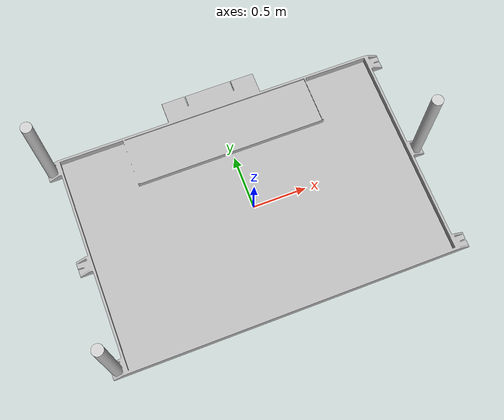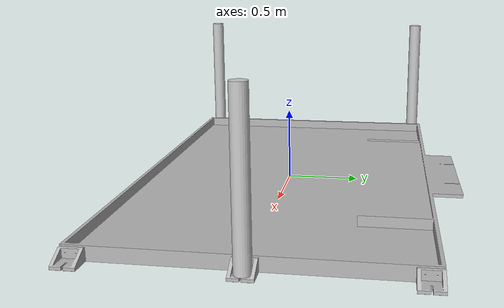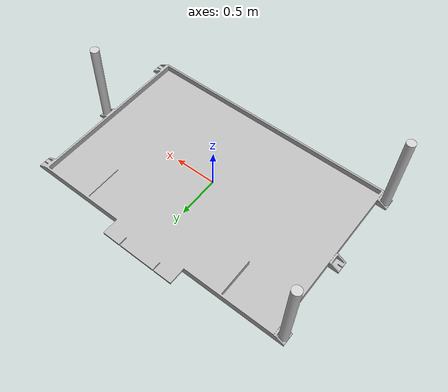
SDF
<sdf version='1.9'>
  <world name='empty'>
    <physics name='1ms' type='ignored'>
      <max_step_size>0.001</max_step_size>
      <real_time_factor>1</real_time_factor>
      <real_time_update_rate>1000</real_time_update_rate>
    </physics>
    <plugin name='gz::sim::systems::Physics' filename='gz-sim-physics-system'/>
    <plugin name='gz::sim::systems::UserCommands' filename='gz-sim-user-commands-system'/>
    <plugin name='gz::sim::systems::SceneBroadcaster' filename='gz-sim-scene-broadcaster-system'/>
    <plugin name='gz::sim::systems::Contact' filename='gz-sim-contact-system'/>
    <gravity>0 0 -9.8000000000000007</gravity>
    <magnetic_field>5.5644999999999998e-06 2.2875799999999999e-05 -4.2388400000000002e-05</magnetic_field>
    <atmosphere type='adiabatic'/>
    <scene>
      <ambient>0.400000006 0.400000006 0.400000006 1</ambient>
      <background>0.699999988 0.699999988 0.699999988 1</background>
      <shadows>true</shadows>
    </scene>
    <plugin name='gz::sim::systems::Physics' filename='gz-sim-physics-system'/>
    <plugin name='gz::sim::systems::Sensors' filename='gz-sim-sensors-system'/>
    <plugin name='gz::sim::systems::Imu' filename='gz-sim-imu-system'/>
    <plugin name='gz::sim::systems::UserCommands' filename='gz-sim-user-commands-system'/>
    <plugin name='gz::sim::systems::SceneBroadcaster' filename='gz-sim-scene-broadcaster-system'/>
    <plugin name='gz::sim::systems::MyPlugin' filename='libgz-match-plugin.so'/>
    <model name='Table_2024'>
      <static>true</static>
      <plugin name='gz::sim::systems::Label' filename='gz-sim-label-system'>
        <label>1</label>
      </plugin>
      <link name='link_0'>
        <gravity>false</gravity>
        <inertial>
          <inertia>
            <ixx>0.16666700000000001</ixx>
            <ixy>0</ixy>
            <ixz>0</ixz>
            <iyy>0.16666700000000001</iyy>
            <iyz>0</iyz>
            <izz>0.16666700000000001</izz>
          </inertia>
          <pose>0 0 0 0 0 0</pose>
          <mass>1</mass>
        </inertial>
        <pose>0 0 0 0 0 0</pose>
        <visual name='visual'>
          <pose>0 0 0 0 0 0</pose>
          <geometry>
            <mesh>
              <uri>model://Table2026/table2026.dae</uri>
              <scale>1 1 1</scale>
            </mesh>
          </geometry>
          <transparency>0</transparency>
          <cast_shadows>true</cast_shadows>
        </visual>
        <collision name='collision'>
          <laser_retro>0</laser_retro>
          <max_contacts>10</max_contacts>
          <pose>0 0 0 0 0 0</pose>
          <geometry>
            <mesh>
              <uri>model://Table2026/table2026.dae</uri>
              <scale>1 1 1</scale>
            </mesh>
          </geometry>
          <surface>
            <friction>
              <ode>
                <mu>1</mu>
                <mu2>1</mu2>
                <fdir1>0 0 0</fdir1>
                <slip1>0</slip1>
                <slip2>0</slip2>
              </ode>
              <torsional>
                <coefficient>1</coefficient>
                <patch_radius>0</patch_radius>
                <surface_radius>0</surface_radius>
                <use_patch_radius>true</use_patch_radius>
                <ode>
                  <slip>0</slip>
                </ode>
              </torsional>
            </friction>
            <contact>
              <collide_without_contact>false</collide_without_contact>
              <collide_without_contact_bitmask>1</collide_without_contact_bitmask>
              <collide_bitmask>1</collide_bitmask>
              <ode>
                <soft_cfm>0</soft_cfm>
                <soft_erp>0.20000000000000001</soft_erp>
                <kp>10000000000000</kp>
                <kd>1</kd>
                <max_vel>0.01</max_vel>
                <min_depth>0.01</min_depth>
              </ode>
              <bullet>
                <split_impulse>true</split_impulse>
                <split_impulse_penetration_threshold>-0.01</split_impulse_penetration_threshold>
                <soft_cfm>0</soft_cfm>
                <soft_erp>0.20000000000000001</soft_erp>
                <kp>10000000000000</kp>
                <kd>1</kd>
              </bullet>
            </contact>
          </surface>
        </collision>
        <enable_wind>false</enable_wind>
      </link>
      <pose>0 0 0 0 0 0</pose>
      <static>false</static>
      <allow_auto_disable>true</allow_auto_disable>
      <self_collide>false</self_collide>
    </model>
    <include>
      <uri>model://poteau</uri>
      <name>Poteau</name>
      <pose>-1.5940834785821341 0.95127999884232251 0 0 0 0</pose>
    </include>
    <include>
      <uri>model://poteau</uri>
      <name>Poteau_0</name>
      <pose>-1.5907866783212912 -0.95203091257895289 0 0 0 0</pose>
    </include>
    <include>
      <uri>model://poteau</uri>
      <name>Poteau_1</name>
      <pose>1.5912342301951856 0.002020733759849222 0 0 0 0</pose>
    </include>
    <light name='sun' type='directional'>
      <pose>0 0 10 0 0 0</pose>
      <cast_shadows>true</cast_shadows>
      <intensity>1</intensity>
      <direction>-0.5 0.10000000000000001 -0.90000000000000002</direction>
      <diffuse>0.800000012 0.800000012 0.800000012 1</diffuse>
      <specular>0.200000003 0.200000003 0.200000003 1</specular>
      <attenuation>
        <range>1000</range>
        <linear>0.0099999997764825821</linear>
        <constant>0.89999997615814209</constant>
        <quadratic>0.0010000000474974513</quadratic>
      </attenuation>
      <spot>
        <inner_angle>0</inner_angle>
        <outer_angle>0</outer_angle>
        <falloff>0</falloff>
      </spot>
    </light>
  </world>
</sdf>

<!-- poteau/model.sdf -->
<sdf version='1.7'>
  <model name='Poteau'>
   	<static>true</static>
    <allow_auto_disable>true</allow_auto_disable>
    <plugin filename="gz-sim-label-system" name="gz::sim::systems::Label">
        <label>2</label>
    </plugin>
    <link name='link_0'>
			<gravity>0</gravity>
      <inertial>
        <pose>0 0 0.02 0 0 0</pose>
        <mass>0.025</mass>
        <inertia>
          <ixx>2.5e-5</ixx>
          <ixy>0</ixy>
          <ixz>0</ixz>
          <iyy>2.5e-5</iyy>
          <iyz>0</iyz>
          <izz>8e-6</izz>
        </inertia>
      </inertial>
      <pose>0 0 0.5 0 0 0</pose>
      <visual name='visual'>
        <pose>0 0 0 0 -0 0</pose>
        <geometry>
          <cylinder>
            <radius>0.05</radius>
            <length>1.0</length>
          </cylinder>
        </geometry>
        <material>
          <ambient>0.8 0.8 0.8 1</ambient>
          <diffuse>0.8 0.8 0.8 1</diffuse>
          <specular>0.1 0.1 0.1 1</specular>
          <emissive>0 0 0 1</emissive>
        </material>
        <transparency>0</transparency>
        <cast_shadows>1</cast_shadows>
      </visual>

      <collision name='collision'>
        <laser_retro>1</laser_retro>
        <max_contacts>5 </max_contacts>
        <pose>0 0 0.5 0 0 0</pose>
        <geometry>
          <cylinder>
            <radius>0.05</radius>
            <length>1.0</length>
          </cylinder>
        </geometry>
      </collision>
    </link>
    <pose>0 0 0 0 0 0</pose>

    <allow_auto_disable>1</allow_auto_disable>
  </model>
</sdf>
